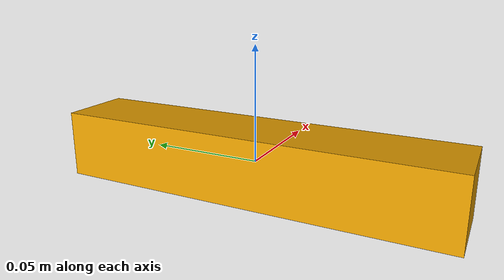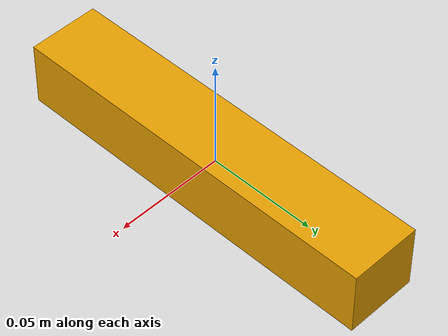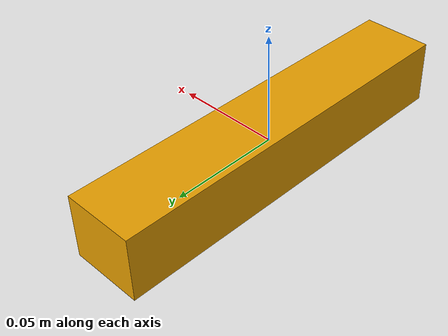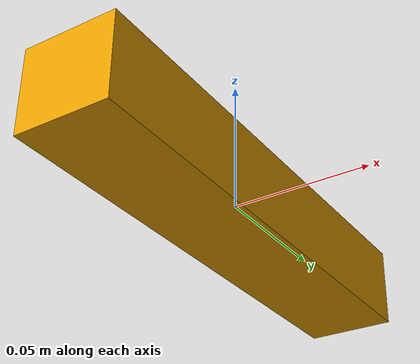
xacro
<?xml version="1.0" ?>
<robot name="stereo_camera" xmlns:xacro="http://ros.org/wiki/xacro">
  <link name="camera_link">
    <visual>
      <geometry>
        <box size="0.033 0.175 0.030"/>
      </geometry>
    </visual>
    <inertial>
      <mass value="1e-5" />
      <inertia ixx="1e-6" ixy="0" ixz="0" iyy="1e-6" iyz="0" izz="1e-6" />
    </inertial>
  </link>

  <gazebo reference="camera_link">
    <sensor type="multicamera" name="stereo_camera">
      <update_rate>30.0</update_rate>
      <camera name="left">
        <horizontal_fov>1.3962634</horizontal_fov>
        <image>
          <width>640</width>
          <height>480</height>
          <format>R8G8B8</format>
        </image>
        <clip>
          <near>0.02</near>
          <far>300</far>
        </clip>
        <noise>
          <type>gaussian</type>
          <mean>0.0</mean>
          <stddev>0.01</stddev>
        </noise>
      </camera>
      <camera name="right">
        <pose>0 -0.12 0 0 0.0001 0</pose>
        <horizontal_fov>1.3962634</horizontal_fov>
        <image>
          <width>640</width>
          <height>480</height>
          <format>R8G8B8</format>
        </image>
        <clip>
          <near>0.02</near>
          <far>300</far>
        </clip>
        <noise>
          <type>gaussian</type>
          <mean>0.0</mean>
          <stddev>0.01</stddev>
        </noise>
      </camera>
      <plugin name="stereo_camera_controller" filename="libgazebo_ros_multicamera.so">
        <alwaysOn>true</alwaysOn>
        <updateRate>30</updateRate>
        <cameraName>stereo</cameraName>
        <imageTopicName>image_raw_color</imageTopicName>
        <cameraInfoTopicName>camera_info</cameraInfoTopicName>
        <frameName>camera_link</frameName>
        <hackBaseline>0.12</hackBaseline>
        <distortionK1>0.0</distortionK1>
        <distortionK2>0.0</distortionK2>
        <distortionK3>0.0</distortionK3>
        <distortionT1>0.0</distortionT1>
        <distortionT2>0.0</distortionT2>
      </plugin>
    </sensor>
  </gazebo>

  <gazebo>
    <plugin name="object_controller" filename="libgazebo_ros_planar_move.so">
      <commandTopic>cmd_vel</commandTopic>
      <odometryTopic>odom</odometryTopic>
      <odometryFrame>odom</odometryFrame>
      <odometryRate>20.0</odometryRate>
      <robotBaseFrame>camera_link</robotBaseFrame>
    </plugin>
  </gazebo>
</robot>
